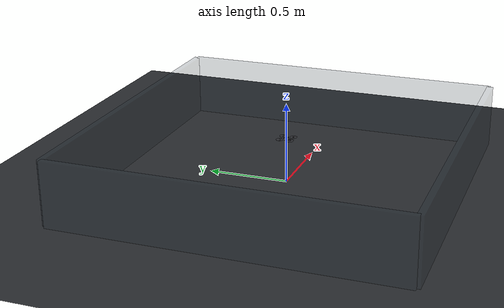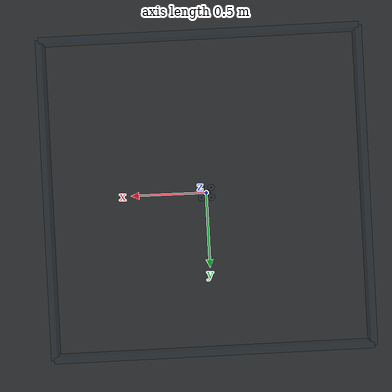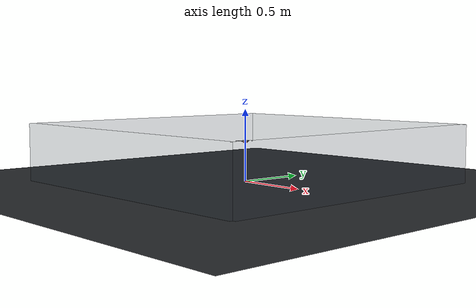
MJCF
<mujoco model="crazyflie_2_1">
  <compiler angle="radian" coordinate="local" />

  <option timestep="0.001" gravity="0 0 -9.81" integrator="implicitfast" />

  <visual>
    <global offwidth="1280" offheight="720" />
    <headlight ambient="0.35 0.35 0.35" diffuse="0.55 0.55 0.55" specular="0.1 0.1 0.1" />
  </visual>

  <asset>
    <texture name="sky" type="skybox" builtin="gradient" rgb1="0.88 0.94 1.0" rgb2="0.68 0.78 0.9" width="256" height="256" />
    <material name="floor_mat" rgba="0.16 0.17 0.18 1" />
    <material name="body_mat" rgba="0.09 0.09 0.1 1" />
    <material name="prop_mat" rgba="0.22 0.22 0.24 0.7" />
    <material name="battery_mat" rgba="0.78 0.16 0.12 1" />
    <material name="arena_mat" rgba="0.12 0.18 0.24 0.22" />
  </asset>

  <default>
    <default class="cf_col">
      <geom contype="1" conaffinity="1" friction="0.9 0.05 0.02" solref="0.005 1" solimp="0.9 0.95 0.001" />
    </default>
    <default class="cf_viz">
      <geom contype="0" conaffinity="0" mass="0" />
    </default>
    <default class="rotor_joint">
      <joint type="hinge" axis="0 0 1" damping="0" armature="2e-7" limited="false" />
    </default>
  </default>

  <worldbody>
    <geom name="floor" type="plane" size="3 3 0.1" material="floor_mat" />

    <geom name="arena_north" type="box" pos="0 1.05 0.20" size="1.05 0.02 0.20" material="arena_mat" contype="0" conaffinity="0" />
    <geom name="arena_south" type="box" pos="0 -1.05 0.20" size="1.05 0.02 0.20" material="arena_mat" contype="0" conaffinity="0" />
    <geom name="arena_east" type="box" pos="1.05 0 0.20" size="0.02 1.05 0.20" material="arena_mat" contype="0" conaffinity="0" />
    <geom name="arena_west" type="box" pos="-1.05 0 0.20" size="0.02 1.05 0.20" material="arena_mat" contype="0" conaffinity="0" />

    <camera
      name="cf_chase"
      mode="trackcom"
      pos="0 -0.45 0.18"
      xyaxes="1 0 0 0 0.55 0.84"
      fovy="55"
    />
    <camera
      name="cf_top"
      mode="trackcom"
      pos="0 0 1.2"
      xyaxes="1 0 0 0 1 0"
      fovy="60"
    />
    <camera
      name="cf_side"
      mode="trackcom"
      pos="0.55 0 0.25"
      xyaxes="0 1 0 0 0 1"
      fovy="50"
    />
    <camera
      name="cf_closeup"
      mode="trackcom"
      pos="-0.12 -0.18 0.06"
      xyaxes="1 -0.3 0 0.1 0.3 0.95"
      fovy="40"
    />

    <body name="cf2" pos="0 0 0.28">
      <freejoint name="cf2_free" />
      <inertial mass="0.021" pos="0 0 0" diaginertia="1.66e-5 1.66e-5 2.9e-5" />

      <geom name="cf2_deck" class="cf_col" type="box" size="0.016 0.016 0.003" material="body_mat" />
      <geom name="cf2_arm_x" class="cf_col" type="capsule" fromto="-0.03253 0 0 0.03253 0 0" size="0.0017" material="body_mat" />
      <geom name="cf2_arm_y" class="cf_col" type="capsule" fromto="0 -0.03253 0 0 0.03253 0" size="0.0017" material="body_mat" />

      <body name="cf2_battery" pos="0 0 -0.0068">
        <inertial mass="0.006" pos="0 0 0" diaginertia="2.5e-6 2.5e-6 3.2e-6" />
        <geom name="cf2_battery_geom" class="cf_col" type="box" size="0.012 0.008 0.0032" material="battery_mat" />
      </body>

      <site name="imu_site" pos="0 0 0" size="0.002" rgba="0.2 0.9 0.9 0.9" />
      <site name="m1_site" pos="0.03253 0.03253 0" size="0.001" rgba="0.9 0.1 0.1 0.6" />
      <site name="m2_site" pos="-0.03253 0.03253 0" size="0.001" rgba="0.1 0.9 0.1 0.6" />
      <site name="m3_site" pos="-0.03253 -0.03253 0" size="0.001" rgba="0.1 0.1 0.9 0.6" />
      <site name="m4_site" pos="0.03253 -0.03253 0" size="0.001" rgba="0.9 0.9 0.1 0.6" />

      <body name="m1_rotor" pos="0.03253 0.03253 0.0032">
        <joint name="m1_joint" class="rotor_joint" />
        <inertial mass="1e-5" pos="0 0 0" diaginertia="1e-8 1e-8 2e-8" />
        <geom name="m1_pod" class="cf_col" type="cylinder" size="0.0046 0.0022" material="body_mat" />
        <geom name="m1_prop" class="cf_col" type="cylinder" size="0.023 0.0006" mass="1e-6" material="prop_mat" />
      </body>

      <body name="m2_rotor" pos="-0.03253 0.03253 0.0032">
        <joint name="m2_joint" class="rotor_joint" />
        <inertial mass="1e-5" pos="0 0 0" diaginertia="1e-8 1e-8 2e-8" />
        <geom name="m2_pod" class="cf_col" type="cylinder" size="0.0046 0.0022" material="body_mat" />
        <geom name="m2_prop" class="cf_col" type="cylinder" size="0.023 0.0006" mass="1e-6" material="prop_mat" />
      </body>

      <body name="m3_rotor" pos="-0.03253 -0.03253 0.0032">
        <joint name="m3_joint" class="rotor_joint" />
        <inertial mass="1e-5" pos="0 0 0" diaginertia="1e-8 1e-8 2e-8" />
        <geom name="m3_pod" class="cf_col" type="cylinder" size="0.0046 0.0022" material="body_mat" />
        <geom name="m3_prop" class="cf_col" type="cylinder" size="0.023 0.0006" mass="1e-6" material="prop_mat" />
      </body>

      <body name="m4_rotor" pos="0.03253 -0.03253 0.0032">
        <joint name="m4_joint" class="rotor_joint" />
        <inertial mass="1e-5" pos="0 0 0" diaginertia="1e-8 1e-8 2e-8" />
        <geom name="m4_pod" class="cf_col" type="cylinder" size="0.0046 0.0022" material="body_mat" />
        <geom name="m4_prop" class="cf_col" type="cylinder" size="0.023 0.0006" mass="1e-6" material="prop_mat" />
      </body>
    </body>
  </worldbody>

  <!-- Rotor joints are free-spinning; thrust/torque is applied analytically
       via xfrc_applied to avoid double-counting actuator reaction forces. -->

  <sensor>
    <gyro name="imu_gyro" site="imu_site" />
    <accelerometer name="imu_accel" site="imu_site" />
    <framepos name="cf_pos" objtype="body" objname="cf2" />
    <framelinvel name="cf_linvel" objtype="body" objname="cf2" />
    <frameangvel name="cf_angvel" objtype="body" objname="cf2" />
    <framequat name="cf_quat" objtype="body" objname="cf2" />
    <jointvel name="m1_speed" joint="m1_joint" />
    <jointvel name="m2_speed" joint="m2_joint" />
    <jointvel name="m3_speed" joint="m3_joint" />
    <jointvel name="m4_speed" joint="m4_joint" />
  </sensor>
</mujoco>
